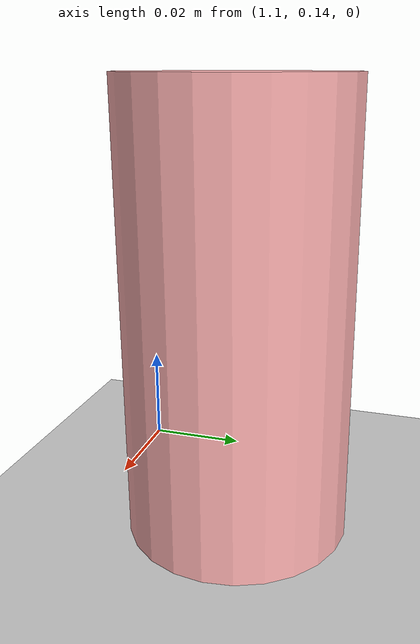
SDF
<sdf version="1.7">
 <world name="default">
  <light name="sun" type="directional">
   <pose>0 0 10 0 -0 0</pose>
   <diffuse>0.8 0.8 0.8 1</diffuse>
   <specular>0.2 0.2 0.2 1</specular>
   <attenuation>
    <range>1000</range>
    <constant>0.9</constant>
    <linear>0.01</linear>
    <quadratic>0.001</quadratic>
   </attenuation>
   <direction>-0.5 0.1 -0.9</direction>
   <spot><inner_angle>0</inner_angle><outer_angle>0</outer_angle><falloff>0</falloff></spot>
  </light>
  <model name="ground_plane">
   <static>1</static>
   <link name="link">
    <collision name="collision">
     <geometry><plane><normal>0 0 1</normal><size>100 100</size></plane></geometry>
     <surface>
      <contact><collide_bitmask>65535</collide_bitmask></contact>
      <friction><ode><mu>100</mu><mu2>50</mu2></ode></friction>
     </surface>
    </collision>
    <visual name="visual">
     <cast_shadows>0</cast_shadows>
     <geometry><plane><normal>0 0 1</normal><size>100 100</size></plane></geometry>
     <material>
      <script><uri>file://media/materials/scripts/gazebo.material</uri><name>Gazebo/Grey</name></script>
     </material>
    </visual>
   </link>
  </model>
  <gravity>0 0 -9.8</gravity>
  <magnetic_field>6e-06 2.3e-05 -4.2e-05</magnetic_field>
  <atmosphere type="adiabatic"/>
  <physics type="ode">
   <max_step_size>0.001</max_step_size>
   <real_time_factor>1</real_time_factor>
   <real_time_update_rate>1000</real_time_update_rate>
  </physics>
  <scene><ambient>0.4 0.4 0.4 1</ambient><background>0.7 0.7 0.7 1</background><shadows>1</shadows></scene>
  <spherical_coordinates>
   <surface_model>EARTH_WGS84</surface_model>
   <latitude_deg>0</latitude_deg>
   <longitude_deg>0</longitude_deg>
   <elevation>0</elevation>
   <heading_deg>0</heading_deg>
  </spherical_coordinates>
  <model name="clyinder_clone_0_clone">
   <link name="link">
    <inertial>
     <mass>0.03</mass>
     <inertia>
      <ixx>0.0001612</ixx>
      <ixy>0</ixy>
      <ixz>0</ixz>
      <iyy>0.0001612</iyy>
      <iyz>0</iyz>
      <izz>3.42e-05</izz>
     </inertia>
    </inertial>
    <visual name="visual">
     <geometry><cylinder><radius>0.0213241</radius><length>0.0847889</length></cylinder></geometry>
     <material>
      <script><name>Gazebo/Grey</name><uri>file://media/materials/scripts/gazebo.material</uri></script>
      <shader type="pixel"><normal_map>__default__</normal_map></shader>
      <ambient>1 0 0 0</ambient>
      <diffuse>1 0.7 0.7 1</diffuse>
      <specular>1 0.01 0.01 1</specular>
      <emissive>0 0 0 1</emissive>
     </material>
    </visual>
    <collision name="collision">
     <geometry><cylinder><radius>0.0213241</radius><length>0.0847889</length></cylinder></geometry>
     <surface>
      <friction>
       <ode><mu>1</mu><mu2>1</mu2><fdir1>0 0 0</fdir1><slip1>0</slip1><slip2>0</slip2></ode>
       <torsional>
        <coefficient>1</coefficient>
        <patch_radius>1000</patch_radius>
        <surface_radius>1000</surface_radius>
        <use_patch_radius>1</use_patch_radius>
        <ode><slip>-0.66</slip></ode>
       </torsional>
      </friction>
      <bounce><restitution_coefficient>1</restitution_coefficient><threshold>1e+06</threshold></bounce>
      <contact>
       <collide_without_contact>0</collide_without_contact>
       <collide_without_contact_bitmask>1</collide_without_contact_bitmask>
       <collide_bitmask>1</collide_bitmask>
       <ode>
        <soft_cfm>0</soft_cfm>
        <soft_erp>0.2</soft_erp>
        <kp>1e+13</kp>
        <kd>1</kd>
        <max_vel>0.31</max_vel>
        <min_depth>0</min_depth>
       </ode>
       <bullet>
        <split_impulse>1</split_impulse>
        <split_impulse_penetration_threshold>-0.01</split_impulse_penetration_threshold>
        <soft_cfm>0</soft_cfm>
        <soft_erp>0.2</soft_erp>
        <kp>1e+13</kp>
        <kd>1</kd>
       </bullet>
      </contact>
     </surface>
    </collision>
   </link>
   <static>0</static>
   <pose>1.12959 0.16915 0.042476 0.002036 -0.003249 -0.270168</pose>
  </model>
 </world>
</sdf>
